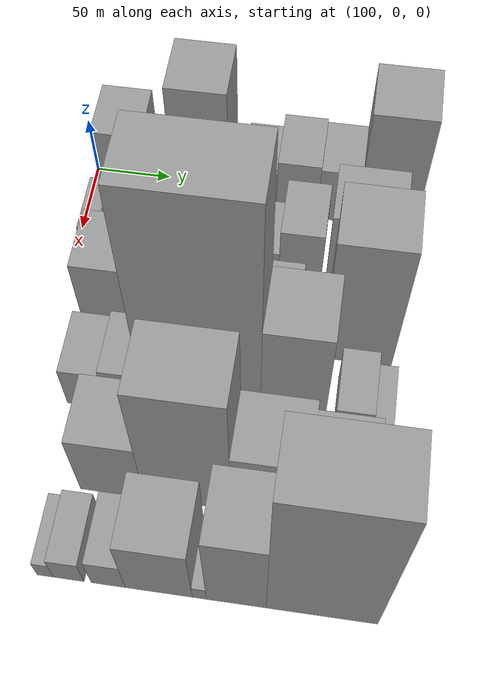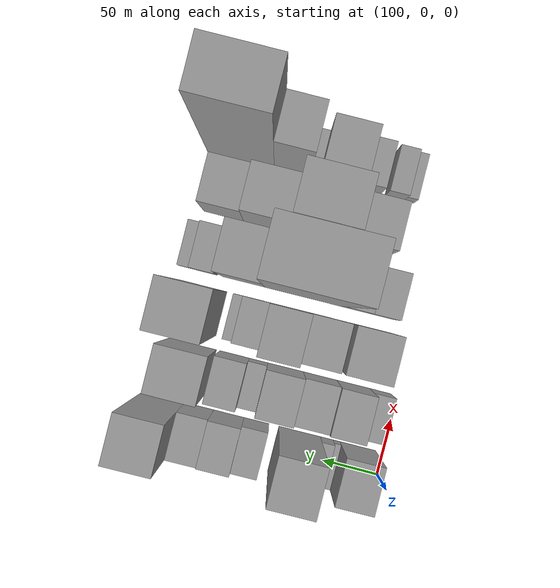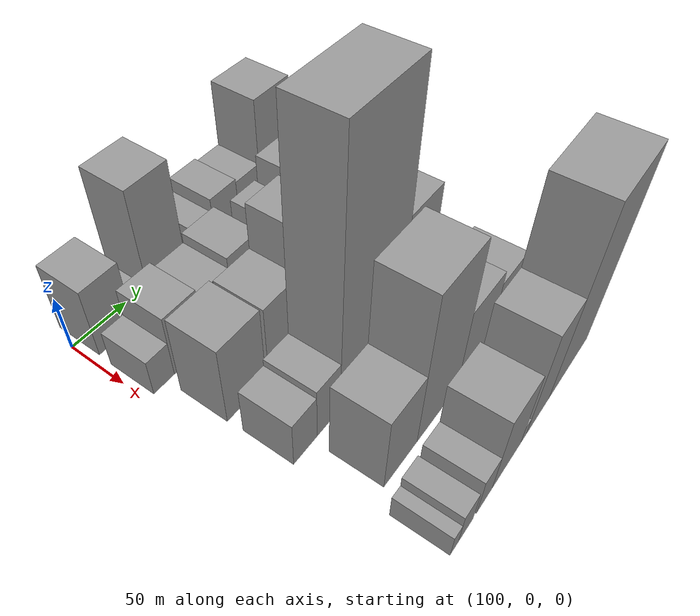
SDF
<sdf version="1.6">
 <world name="default">
  <model name="building_24">
   <static>1</static>
   <pose>100.0000 22.8650 0 0.000000 0.000000 0.000000</pose>
   <link name="link">
    <pose>0 0 31.50 0 0 0</pose>
    <collision name="collision"><geometry><box><size>40.0000 32.4269 63.0000</size></box></geometry></collision>
    <visual name="visual">
     <cast_shadows>0</cast_shadows>
     <geometry><box><size>40.0000 32.4269 63.0000</size></box></geometry>
     <material>
      <script>
       <uri>model://grey_wall/materials/scripts</uri>
       <uri>model://grey_wall/materials/textures</uri>
       <name>vrc/grey_wall</name>
      </script>
     </material>
    </visual>
   </link>
  </model>
  <model name="building_25">
   <static>1</static>
   <pose>100.0000 42.1342 0 0.000000 0.000000 0.000000</pose>
   <link name="link">
    <pose>0 0 7.50 0 0 0</pose>
    <collision name="collision"><geometry><box><size>40.0000 6.1115 15.0000</size></box></geometry></collision>
    <visual name="visual">
     <cast_shadows>0</cast_shadows>
     <geometry><box><size>40.0000 6.1115 15.0000</size></box></geometry>
     <material>
      <script>
       <uri>model://grey_wall/materials/scripts</uri>
       <uri>model://grey_wall/materials/textures</uri>
       <name>vrc/grey_wall</name>
      </script>
     </material>
    </visual>
   </link>
  </model>
  <model name="building_26">
   <static>1</static>
   <pose>100.0000 51.0352 0 0.000000 0.000000 0.000000</pose>
   <link name="link">
    <pose>0 0 12.00 0 0 0</pose>
    <collision name="collision"><geometry><box><size>40.0000 11.6906 24.0000</size></box></geometry></collision>
    <visual name="visual">
     <cast_shadows>0</cast_shadows>
     <geometry><box><size>40.0000 11.6906 24.0000</size></box></geometry>
     <material>
      <script>
       <uri>model://grey_wall/materials/scripts</uri>
       <uri>model://grey_wall/materials/textures</uri>
       <name>vrc/grey_wall</name>
      </script>
     </material>
    </visual>
   </link>
  </model>
  <model name="building_27">
   <static>1</static>
   <pose>100.0000 75.7441 0 0.000000 0.000000 0.000000</pose>
   <link name="link">
    <pose>0 0 55.50 0 0 0</pose>
    <collision name="collision"><geometry><box><size>40.0000 37.7272 111.0000</size></box></geometry></collision>
    <visual name="visual">
     <cast_shadows>0</cast_shadows>
     <geometry><box><size>40.0000 37.7272 111.0000</size></box></geometry>
     <material>
      <script>
       <uri>model://grey_wall/materials/scripts</uri>
       <uri>model://grey_wall/materials/textures</uri>
       <name>vrc/grey_wall</name>
      </script>
     </material>
    </visual>
   </link>
  </model>
  <model name="building_28">
   <static>1</static>
   <pose>100.0000 114.8784 0 0.000000 0.000000 0.000000</pose>
   <link name="link">
    <pose>0 0 21.00 0 0 0</pose>
    <collision name="collision"><geometry><box><size>40.0000 22.5414 42.0000</size></box></geometry></collision>
    <visual name="visual">
     <cast_shadows>0</cast_shadows>
     <geometry><box><size>40.0000 22.5414 42.0000</size></box></geometry>
     <material>
      <script>
       <uri>model://grey_wall/materials/scripts</uri>
       <uri>model://grey_wall/materials/textures</uri>
       <name>vrc/grey_wall</name>
      </script>
     </material>
    </visual>
   </link>
  </model>
  <model name="building_29">
   <static>1</static>
   <pose>100.0000 139.9998 0 0.000000 0.000000 0.000000</pose>
   <link name="link">
    <pose>0 0 27.00 0 0 0</pose>
    <collision name="collision"><geometry><box><size>40.0000 27.7014 54.0000</size></box></geometry></collision>
    <visual name="visual">
     <cast_shadows>0</cast_shadows>
     <geometry><box><size>40.0000 27.7014 54.0000</size></box></geometry>
     <material>
      <script>
       <uri>model://grey_wall/materials/scripts</uri>
       <uri>model://grey_wall/materials/textures</uri>
       <name>vrc/grey_wall</name>
      </script>
     </material>
    </visual>
   </link>
  </model>
  <model name="building_30">
   <static>1</static>
   <pose>100.0000 166.9720 0 0.000000 0.000000 0.000000</pose>
   <link name="link">
    <pose>0 0 25.50 0 0 0</pose>
    <collision name="collision"><geometry><box><size>40.0000 26.2428 51.0000</size></box></geometry></collision>
    <visual name="visual">
     <cast_shadows>0</cast_shadows>
     <geometry><box><size>40.0000 26.2428 51.0000</size></box></geometry>
     <material>
      <script>
       <uri>model://grey_wall/materials/scripts</uri>
       <uri>model://grey_wall/materials/textures</uri>
       <name>vrc/grey_wall</name>
      </script>
     </material>
    </visual>
   </link>
  </model>
  <model name="building_31">
   <static>1</static>
   <pose>100.0000 199.5539 0 0.000000 0.000000 0.000000</pose>
   <link name="link">
    <pose>0 0 54.00 0 0 0</pose>
    <collision name="collision"><geometry><box><size>40.0000 38.9211 108.0000</size></box></geometry></collision>
    <visual name="visual">
     <cast_shadows>0</cast_shadows>
     <geometry><box><size>40.0000 38.9211 108.0000</size></box></geometry>
     <material>
      <script>
       <uri>model://grey_wall/materials/scripts</uri>
       <uri>model://grey_wall/materials/textures</uri>
       <name>vrc/grey_wall</name>
      </script>
     </material>
    </visual>
   </link>
  </model>
  <model name="building_79">
   <static>1</static>
   <pose>152.0000 15.5596 0 0.000000 0.000000 0.000000</pose>
   <link name="link">
    <pose>0 0 16.50 0 0 0</pose>
    <collision name="collision"><geometry><box><size>40.0000 19.1452 33.0000</size></box></geometry></collision>
    <visual name="visual">
     <cast_shadows>0</cast_shadows>
     <geometry><box><size>40.0000 19.1452 33.0000</size></box></geometry>
     <material>
      <script>
       <uri>model://grey_wall/materials/scripts</uri>
       <uri>model://grey_wall/materials/textures</uri>
       <name>vrc/grey_wall</name>
      </script>
     </material>
    </visual>
   </link>
  </model>
  <model name="building_80">
   <static>1</static>
   <pose>152.0000 40.1579 0 0.000000 0.000000 0.000000</pose>
   <link name="link">
    <pose>0 0 28.50 0 0 0</pose>
    <collision name="collision"><geometry><box><size>40.0000 30.0513 57.0000</size></box></geometry></collision>
    <visual name="visual">
     <cast_shadows>0</cast_shadows>
     <geometry><box><size>40.0000 30.0513 57.0000</size></box></geometry>
     <material>
      <script>
       <uri>model://grey_wall/materials/scripts</uri>
       <uri>model://grey_wall/materials/textures</uri>
       <name>vrc/grey_wall</name>
      </script>
     </material>
    </visual>
   </link>
  </model>
  <model name="building_81">
   <static>1</static>
   <pose>152.0000 70.3495 0 0.000000 0.000000 0.000000</pose>
   <link name="link">
    <pose>0 0 25.50 0 0 0</pose>
    <collision name="collision"><geometry><box><size>40.0000 30.3320 51.0000</size></box></geometry></collision>
    <visual name="visual">
     <cast_shadows>0</cast_shadows>
     <geometry><box><size>40.0000 30.3320 51.0000</size></box></geometry>
     <material>
      <script>
       <uri>model://grey_wall/materials/scripts</uri>
       <uri>model://grey_wall/materials/textures</uri>
       <name>vrc/grey_wall</name>
      </script>
     </material>
    </visual>
   </link>
  </model>
  <model name="building_82">
   <static>1</static>
   <pose>152.0000 101.6549 0 0.000000 0.000000 0.000000</pose>
   <link name="link">
    <pose>0 0 30.00 0 0 0</pose>
    <collision name="collision"><geometry><box><size>40.0000 32.2787 60.0000</size></box></geometry></collision>
    <visual name="visual">
     <cast_shadows>0</cast_shadows>
     <geometry><box><size>40.0000 32.2787 60.0000</size></box></geometry>
     <material>
      <script>
       <uri>model://grey_wall/materials/scripts</uri>
       <uri>model://grey_wall/materials/textures</uri>
       <name>vrc/grey_wall</name>
      </script>
     </material>
    </visual>
   </link>
  </model>
  <model name="building_83">
   <static>1</static>
   <pose>152.0000 126.0476 0 0.000000 0.000000 0.000000</pose>
   <link name="link">
    <pose>0 0 15.00 0 0 0</pose>
    <collision name="collision"><geometry><box><size>40.0000 16.5067 30.0000</size></box></geometry></collision>
    <visual name="visual">
     <cast_shadows>0</cast_shadows>
     <geometry><box><size>40.0000 16.5067 30.0000</size></box></geometry>
     <material>
      <script>
       <uri>model://grey_wall/materials/scripts</uri>
       <uri>model://grey_wall/materials/textures</uri>
       <name>vrc/grey_wall</name>
      </script>
     </material>
    </visual>
   </link>
  </model>
  <model name="building_84">
   <static>1</static>
   <pose>152.0000 147.8596 0 0.000000 0.000000 0.000000</pose>
   <link name="link">
    <pose>0 0 27.00 0 0 0</pose>
    <collision name="collision"><geometry><box><size>40.0000 27.1173 54.0000</size></box></geometry></collision>
    <visual name="visual">
     <cast_shadows>0</cast_shadows>
     <geometry><box><size>40.0000 27.1173 54.0000</size></box></geometry>
     <material>
      <script>
       <uri>model://grey_wall/materials/scripts</uri>
       <uri>model://grey_wall/materials/textures</uri>
       <name>vrc/grey_wall</name>
      </script>
     </material>
    </visual>
   </link>
  </model>
  <model name="building_85">
   <static>1</static>
   <pose>152.0000 186.0106 0 0.000000 0.000000 0.000000</pose>
   <link name="link">
    <pose>0 0 37.50 0 0 0</pose>
    <collision name="collision"><geometry><box><size>40.0000 43.1847 75.0000</size></box></geometry></collision>
    <visual name="visual">
     <cast_shadows>0</cast_shadows>
     <geometry><box><size>40.0000 43.1847 75.0000</size></box></geometry>
     <material>
      <script>
       <uri>model://grey_wall/materials/scripts</uri>
       <uri>model://grey_wall/materials/textures</uri>
       <name>vrc/grey_wall</name>
      </script>
     </material>
    </visual>
   </link>
  </model>
  <model name="building_129">
   <static>1</static>
   <pose>204.0000 37.9134 0 0.000000 0.000000 0.000000</pose>
   <link name="link">
    <pose>0 0 36.00 0 0 0</pose>
    <collision name="collision"><geometry><box><size>40.0000 38.4809 72.0000</size></box></geometry></collision>
    <visual name="visual">
     <cast_shadows>0</cast_shadows>
     <geometry><box><size>40.0000 38.4809 72.0000</size></box></geometry>
     <material>
      <script>
       <uri>model://grey_wall/materials/scripts</uri>
       <uri>model://grey_wall/materials/textures</uri>
       <name>vrc/grey_wall</name>
      </script>
     </material>
    </visual>
   </link>
  </model>
  <model name="building_130">
   <static>1</static>
   <pose>204.0000 77.5930 0 0.000000 0.000000 0.000000</pose>
   <link name="link">
    <pose>0 0 34.50 0 0 0</pose>
    <collision name="collision"><geometry><box><size>40.0000 34.8783 69.0000</size></box></geometry></collision>
    <visual name="visual">
     <cast_shadows>0</cast_shadows>
     <geometry><box><size>40.0000 34.8783 69.0000</size></box></geometry>
     <material>
      <script>
       <uri>model://grey_wall/materials/scripts</uri>
       <uri>model://grey_wall/materials/textures</uri>
       <name>vrc/grey_wall</name>
      </script>
     </material>
    </visual>
   </link>
  </model>
  <model name="building_131">
   <static>1</static>
   <pose>204.0000 111.3332 0 0.000000 0.000000 0.000000</pose>
   <link name="link">
    <pose>0 0 54.00 0 0 0</pose>
    <collision name="collision"><geometry><box><size>40.0000 32.6023 108.0000</size></box></geometry></collision>
    <visual name="visual">
     <cast_shadows>0</cast_shadows>
     <geometry><box><size>40.0000 32.6023 108.0000</size></box></geometry>
     <material>
      <script>
       <uri>model://grey_wall/materials/scripts</uri>
       <uri>model://grey_wall/materials/textures</uri>
       <name>vrc/grey_wall</name>
      </script>
     </material>
    </visual>
   </link>
  </model>
  <model name="building_132">
   <static>1</static>
   <pose>204.0000 139.5931 0 0.000000 0.000000 0.000000</pose>
   <link name="link">
    <pose>0 0 21.00 0 0 0</pose>
    <collision name="collision"><geometry><box><size>40.0000 23.9176 42.0000</size></box></geometry></collision>
    <visual name="visual">
     <cast_shadows>0</cast_shadows>
     <geometry><box><size>40.0000 23.9176 42.0000</size></box></geometry>
     <material>
      <script>
       <uri>model://grey_wall/materials/scripts</uri>
       <uri>model://grey_wall/materials/textures</uri>
       <name>vrc/grey_wall</name>
      </script>
     </material>
    </visual>
   </link>
  </model>
  <model name="building_133">
   <static>1</static>
   <pose>204.0000 156.2663 0 0.000000 0.000000 0.000000</pose>
   <link name="link">
    <pose>0 0 10.50 0 0 0</pose>
    <collision name="collision"><geometry><box><size>40.0000 9.4288 21.0000</size></box></geometry></collision>
    <visual name="visual">
     <cast_shadows>0</cast_shadows>
     <geometry><box><size>40.0000 9.4288 21.0000</size></box></geometry>
     <material>
      <script>
       <uri>model://grey_wall/materials/scripts</uri>
       <uri>model://grey_wall/materials/textures</uri>
       <name>vrc/grey_wall</name>
      </script>
     </material>
    </visual>
   </link>
  </model>
  <model name="building_134">
   <static>1</static>
   <pose>204.0000 189.3628 0 0.000000 0.000000 0.000000</pose>
   <link name="link">
    <pose>0 0 63.00 0 0 0</pose>
    <collision name="collision"><geometry><box><size>40.0000 42.7642 126.0000</size></box></geometry></collision>
    <visual name="visual">
     <cast_shadows>0</cast_shadows>
     <geometry><box><size>40.0000 42.7642 126.0000</size></box></geometry>
     <material>
      <script>
       <uri>model://grey_wall/materials/scripts</uri>
       <uri>model://grey_wall/materials/textures</uri>
       <name>vrc/grey_wall</name>
      </script>
     </material>
    </visual>
   </link>
  </model>
  <model name="building_183">
   <static>1</static>
   <pose>256.0000 31.6929 0 0.000000 0.000000 0.000000</pose>
   <link name="link">
    <pose>0 0 21.00 0 0 0</pose>
    <collision name="collision"><geometry><box><size>40.0000 23.7675 42.0000</size></box></geometry></collision>
    <visual name="visual">
     <cast_shadows>0</cast_shadows>
     <geometry><box><size>40.0000 23.7675 42.0000</size></box></geometry>
     <material>
      <script>
       <uri>model://grey_wall/materials/scripts</uri>
       <uri>model://grey_wall/materials/textures</uri>
       <name>vrc/grey_wall</name>
      </script>
     </material>
    </visual>
   </link>
  </model>
  <model name="building_184">
   <static>1</static>
   <pose>256.0000 55.8964 0 0.000000 0.000000 0.000000</pose>
   <link name="link">
    <pose>0 0 24.00 0 0 0</pose>
    <collision name="collision"><geometry><box><size>40.0000 24.6395 48.0000</size></box></geometry></collision>
    <visual name="visual">
     <cast_shadows>0</cast_shadows>
     <geometry><box><size>40.0000 24.6395 48.0000</size></box></geometry>
     <material>
      <script>
       <uri>model://grey_wall/materials/scripts</uri>
       <uri>model://grey_wall/materials/textures</uri>
       <name>vrc/grey_wall</name>
      </script>
     </material>
    </visual>
   </link>
  </model>
  <model name="building_185">
   <static>1</static>
   <pose>256.0000 102.4235 0 0.000000 0.000000 0.000000</pose>
   <link name="link">
    <pose>0 0 112.50 0 0 0</pose>
    <collision name="collision"><geometry><box><size>40.0000 68.4146 225.0000</size></box></geometry></collision>
    <visual name="visual">
     <cast_shadows>0</cast_shadows>
     <geometry><box><size>40.0000 68.4146 225.0000</size></box></geometry>
     <material>
      <script>
       <uri>model://grey_wall/materials/scripts</uri>
       <uri>model://grey_wall/materials/textures</uri>
       <name>vrc/grey_wall</name>
      </script>
     </material>
    </visual>
   </link>
  </model>
  <model name="building_186">
   <static>1</static>
   <pose>256.0000 155.1652 0 0.000000 0.000000 0.000000</pose>
   <link name="link">
    <pose>0 0 58.50 0 0 0</pose>
    <collision name="collision"><geometry><box><size>40.0000 37.0689 117.0000</size></box></geometry></collision>
    <visual name="visual">
     <cast_shadows>0</cast_shadows>
     <geometry><box><size>40.0000 37.0689 117.0000</size></box></geometry>
     <material>
      <script>
       <uri>model://grey_wall/materials/scripts</uri>
       <uri>model://grey_wall/materials/textures</uri>
       <name>vrc/grey_wall</name>
      </script>
     </material>
    </visual>
   </link>
  </model>
  <model name="building_187">
   <static>1</static>
   <pose>256.0000 190.5748 0 0.000000 0.000000 0.000000</pose>
   <link name="link">
    <pose>0 0 19.50 0 0 0</pose>
    <collision name="collision"><geometry><box><size>40.0000 21.7503 39.0000</size></box></geometry></collision>
    <visual name="visual">
     <cast_shadows>0</cast_shadows>
     <geometry><box><size>40.0000 21.7503 39.0000</size></box></geometry>
     <material>
      <script>
       <uri>model://grey_wall/materials/scripts</uri>
       <uri>model://grey_wall/materials/textures</uri>
       <name>vrc/grey_wall</name>
      </script>
     </material>
    </visual>
   </link>
  </model>
  <model name="building_188">
   <static>1</static>
   <pose>256.0000 207.4193 0 0.000000 0.000000 0.000000</pose>
   <link name="link">
    <pose>0 0 12.00 0 0 0</pose>
    <collision name="collision"><geometry><box><size>40.0000 11.9387 24.0000</size></box></geometry></collision>
    <visual name="visual">
     <cast_shadows>0</cast_shadows>
     <geometry><box><size>40.0000 11.9387 24.0000</size></box></geometry>
     <material>
      <script>
       <uri>model://grey_wall/materials/scripts</uri>
       <uri>model://grey_wall/materials/textures</uri>
       <name>vrc/grey_wall</name>
      </script>
     </material>
    </visual>
   </link>
  </model>
  <model name="building_230">
   <static>1</static>
   <pose>308.0000 58.3735 0 0.000000 0.000000 0.000000</pose>
   <link name="link">
    <pose>0 0 34.50 0 0 0</pose>
    <collision name="collision"><geometry><box><size>40.0000 37.3380 69.0000</size></box></geometry></collision>
    <visual name="visual">
     <cast_shadows>0</cast_shadows>
     <geometry><box><size>40.0000 37.3380 69.0000</size></box></geometry>
     <material>
      <script>
       <uri>model://grey_wall/materials/scripts</uri>
       <uri>model://grey_wall/materials/textures</uri>
       <name>vrc/grey_wall</name>
      </script>
     </material>
    </visual>
   </link>
  </model>
  <model name="building_231">
   <static>1</static>
   <pose>308.0000 102.1707 0 0.000000 0.000000 0.000000</pose>
   <link name="link">
    <pose>0 0 69.00 0 0 0</pose>
    <collision name="collision"><geometry><box><size>40.0000 50.2563 138.0000</size></box></geometry></collision>
    <visual name="visual">
     <cast_shadows>0</cast_shadows>
     <geometry><box><size>40.0000 50.2563 138.0000</size></box></geometry>
     <material>
      <script>
       <uri>model://grey_wall/materials/scripts</uri>
       <uri>model://grey_wall/materials/textures</uri>
       <name>vrc/grey_wall</name>
      </script>
     </material>
    </visual>
   </link>
  </model>
  <model name="building_232">
   <static>1</static>
   <pose>308.0000 148.1914 0 0.000000 0.000000 0.000000</pose>
   <link name="link">
    <pose>0 0 37.50 0 0 0</pose>
    <collision name="collision"><geometry><box><size>40.0000 41.7850 75.0000</size></box></geometry></collision>
    <visual name="visual">
     <cast_shadows>0</cast_shadows>
     <geometry><box><size>40.0000 41.7850 75.0000</size></box></geometry>
     <material>
      <script>
       <uri>model://grey_wall/materials/scripts</uri>
       <uri>model://grey_wall/materials/textures</uri>
       <name>vrc/grey_wall</name>
      </script>
     </material>
    </visual>
   </link>
  </model>
  <model name="building_233">
   <static>1</static>
   <pose>308.0000 186.9494 0 0.000000 0.000000 0.000000</pose>
   <link name="link">
    <pose>0 0 31.50 0 0 0</pose>
    <collision name="collision"><geometry><box><size>40.0000 35.7312 63.0000</size></box></geometry></collision>
    <visual name="visual">
     <cast_shadows>0</cast_shadows>
     <geometry><box><size>40.0000 35.7312 63.0000</size></box></geometry>
     <material>
      <script>
       <uri>model://grey_wall/materials/scripts</uri>
       <uri>model://grey_wall/materials/textures</uri>
       <name>vrc/grey_wall</name>
      </script>
     </material>
    </visual>
   </link>
  </model>
  <model name="building_278">
   <static>1</static>
   <pose>360.0000 31.7530 0 0.000000 0.000000 0.000000</pose>
   <link name="link">
    <pose>0 0 10.50 0 0 0</pose>
    <collision name="collision"><geometry><box><size>40.0000 9.0938 21.0000</size></box></geometry></collision>
    <visual name="visual">
     <cast_shadows>0</cast_shadows>
     <geometry><box><size>40.0000 9.0938 21.0000</size></box></geometry>
     <material>
      <script>
       <uri>model://grey_wall/materials/scripts</uri>
       <uri>model://grey_wall/materials/textures</uri>
       <name>vrc/grey_wall</name>
      </script>
     </material>
    </visual>
   </link>
  </model>
  <model name="building_279">
   <static>1</static>
   <pose>360.0000 44.9216 0 0.000000 0.000000 0.000000</pose>
   <link name="link">
    <pose>0 0 15.00 0 0 0</pose>
    <collision name="collision"><geometry><box><size>40.0000 17.2434 30.0000</size></box></geometry></collision>
    <visual name="visual">
     <cast_shadows>0</cast_shadows>
     <geometry><box><size>40.0000 17.2434 30.0000</size></box></geometry>
     <material>
      <script>
       <uri>model://grey_wall/materials/scripts</uri>
       <uri>model://grey_wall/materials/textures</uri>
       <name>vrc/grey_wall</name>
      </script>
     </material>
    </visual>
   </link>
  </model>
  <model name="building_280">
   <static>1</static>
   <pose>360.0000 67.0462 0 0.000000 0.000000 0.000000</pose>
   <link name="link">
    <pose>0 0 18.00 0 0 0</pose>
    <collision name="collision"><geometry><box><size>40.0000 19.0058 36.0000</size></box></geometry></collision>
    <visual name="visual">
     <cast_shadows>0</cast_shadows>
     <geometry><box><size>40.0000 19.0058 36.0000</size></box></geometry>
     <material>
      <script>
       <uri>model://grey_wall/materials/scripts</uri>
       <uri>model://grey_wall/materials/textures</uri>
       <name>vrc/grey_wall</name>
      </script>
     </material>
    </visual>
   </link>
  </model>
  <model name="building_281">
   <static>1</static>
   <pose>360.0000 95.2002 0 0.000000 0.000000 0.000000</pose>
   <link name="link">
    <pose>0 0 36.00 0 0 0</pose>
    <collision name="collision"><geometry><box><size>40.0000 37.3022 72.0000</size></box></geometry></collision>
    <visual name="visual">
     <cast_shadows>0</cast_shadows>
     <geometry><box><size>40.0000 37.3022 72.0000</size></box></geometry>
     <material>
      <script>
       <uri>model://grey_wall/materials/scripts</uri>
       <uri>model://grey_wall/materials/textures</uri>
       <name>vrc/grey_wall</name>
      </script>
     </material>
    </visual>
   </link>
  </model>
  <model name="building_282">
   <static>1</static>
   <pose>360.0000 117.7105 0 0.000000 0.000000 0.000000</pose>
   <link name="link">
    <pose>0 0 9.00 0 0 0</pose>
    <collision name="collision"><geometry><box><size>40.0000 7.7182 18.0000</size></box></geometry></collision>
    <visual name="visual">
     <cast_shadows>0</cast_shadows>
     <geometry><box><size>40.0000 7.7182 18.0000</size></box></geometry>
     <material>
      <script>
       <uri>model://grey_wall/materials/scripts</uri>
       <uri>model://grey_wall/materials/textures</uri>
       <name>vrc/grey_wall</name>
      </script>
     </material>
    </visual>
   </link>
  </model>
  <model name="building_283">
   <static>1</static>
   <pose>360.0000 137.9249 0 0.000000 0.000000 0.000000</pose>
   <link name="link">
    <pose>0 0 49.50 0 0 0</pose>
    <collision name="collision"><geometry><box><size>40.0000 32.7107 99.0000</size></box></geometry></collision>
    <visual name="visual">
     <cast_shadows>0</cast_shadows>
     <geometry><box><size>40.0000 32.7107 99.0000</size></box></geometry>
     <material>
      <script>
       <uri>model://grey_wall/materials/scripts</uri>
       <uri>model://grey_wall/materials/textures</uri>
       <name>vrc/grey_wall</name>
      </script>
     </material>
    </visual>
   </link>
  </model>
  <model name="building_284">
   <static>1</static>
   <pose>360.0000 184.6107 0 0.000000 0.000000 0.000000</pose>
   <link name="link">
    <pose>0 0 85.50 0 0 0</pose>
    <collision name="collision"><geometry><box><size>40.0000 60.6609 171.0000</size></box></geometry></collision>
    <visual name="visual">
     <cast_shadows>0</cast_shadows>
     <geometry><box><size>40.0000 60.6609 171.0000</size></box></geometry>
     <material>
      <script>
       <uri>model://grey_wall/materials/scripts</uri>
       <uri>model://grey_wall/materials/textures</uri>
       <name>vrc/grey_wall</name>
      </script>
     </material>
    </visual>
   </link>
  </model>
 </world>
</sdf>
